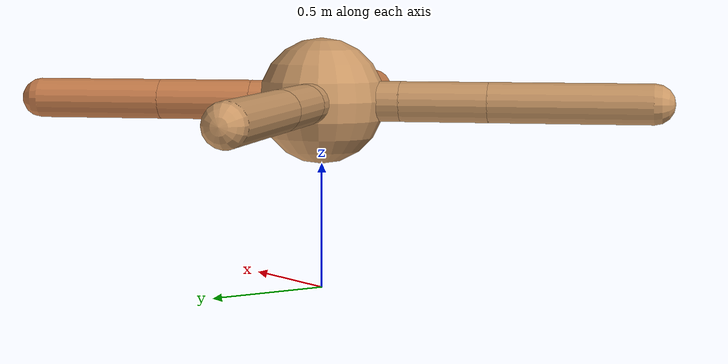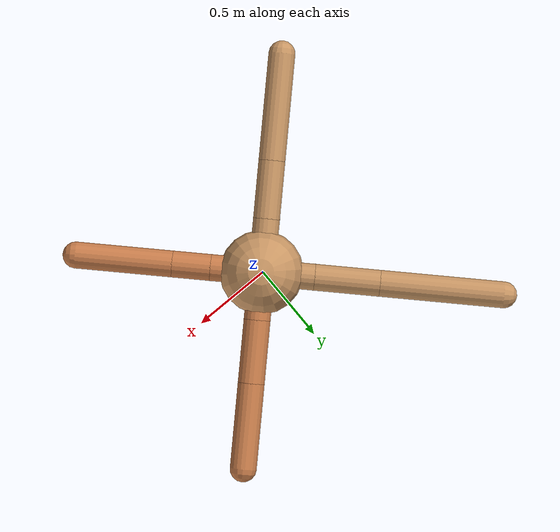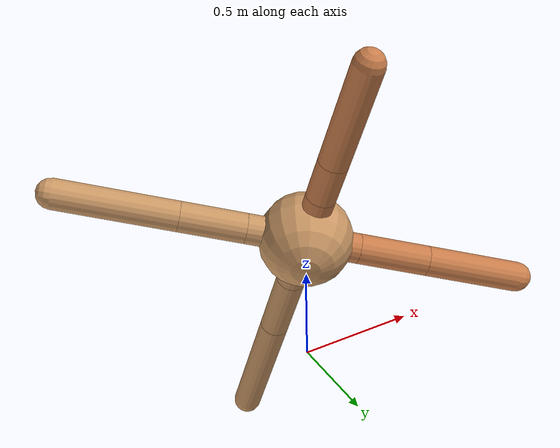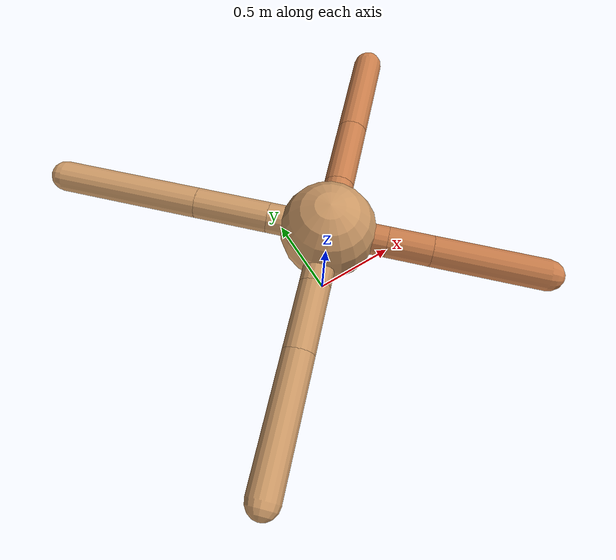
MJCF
<mujoco model="ant">
  <compiler angle="degree" coordinate="local" inertiafromgeom="true" />
  <option integrator="RK4" timestep="0.01" />
  <custom>
    <numeric data="0.0 0.0 0.55 1.0 0.0 0.0 0.0 0.0 1.0 0.0 -1.0 0.0 -1.0 0.0 1.0" name="init_qpos" />
  </custom>
  <default>
    <joint armature="1" damping="1" limited="true" />
    <geom conaffinity="0" condim="3" density="5.0" friction="1.5 0.1 0.1" margin="0.01" rgba="0.8 0.6 0.4 1" />
  </default>
  <worldbody>
    <body name="torso" pos="0 0 0.75">
      <geom name="torso_geom" pos="0 0 0" size="0.25" type="sphere" />

      <body name="front_left_leg" pos="0 0 0">
        <geom fromto="0.0 0.0 0.0 0.2008200592948425 0.2008200592948425 0.0" name="aux_1_geom" size="0.08" type="capsule" rgba=".8 .5 .3 1" />
        <body name="aux_1" pos="0.2008200592948425 0.2008200592948425 0.0">
          <joint axis="0 0 1" name="hip_1" pos="0.0 0.0 0.0" range="-40 40" type="hinge" />
          <geom fromto="0.0 0.0 0.0 0.26688185737251935 0.26688185737251935 0.0" name="left_leg_geom" size="0.08" type="capsule" rgba=".8 .5 .3 1" />
          <body pos="0.26688185737251935 0.26688185737251935 0.0" name="front_left_foot">
            <joint axis="-1 1 0" name="ankle_1" pos="0.0 0.0 0.0" range="30 100" type="hinge" />
            <geom fromto="0.0 0.0 0.0 0.36127225001820507 0.36127225001820507 0.0" name="left_ankle_geom" size="0.08" type="capsule" rgba=".8 .5 .3 1" />
          </body>
        </body>
      </body>
      <body name="front_right_leg" pos="0 0 0">
        <geom fromto="0.0 0.0 0.0 -0.22356576819008778 0.22356576819008778 0.0" name="aux_2_geom" size="0.08" type="capsule" />
        <body name="aux_2" pos="-0.22356576819008778 0.22356576819008778 0.0">
          <joint axis="0 0 1" name="hip_2" pos="0.0 0.0 0.0" range="-40 40" type="hinge" />
          <geom fromto="0.0 0.0 0.0 -0.2750281247071456 0.2750281247071456 0.0" name="right_leg_geom" size="0.08" type="capsule" />
          <body pos="-0.2750281247071456 0.2750281247071456 0.0" name="front_right_foot">
            <joint axis="1 1 0" name="ankle_2" pos="0.0 0.0 0.0" range="-100 -30" type="hinge" />
            <geom fromto="0.0 0.0 0.0 -0.5225660193729552 0.5225660193729552 0.0" name="right_ankle_geom" size="0.08" type="capsule" />
          </body>
        </body>
      </body>
      <body name="left_back_leg" pos="0 0 0">
        <geom fromto="0.0 0.0 0.0 -0.22472102359565949 -0.22472102359565949 0.0" name="aux_3_geom" size="0.08" type="capsule" />
        <body name="aux_3" pos="-0.22472102359565949 -0.22472102359565949 0.0">
          <joint axis="0 0 1" name="hip_3" pos="0.0 0.0 0.0" range="-40 40" type="hinge" />
          <geom fromto="0.0 0.0 0.0 -0.2456045823798248 -0.2456045823798248 0.0" name="back_leg_geom" size="0.08" type="capsule" />
          <body pos="-0.2456045823798248 -0.2456045823798248 0.0" name="left_back_foot">
            <joint axis="-1 1 0" name="ankle_3" pos="0.0 0.0 0.0" range="-100 -30" type="hinge" />
            <geom fromto="0.0 0.0 0.0 -0.4512024190414559 -0.4512024190414559 0.0" name="third_ankle_geom" size="0.08" type="capsule" />
          </body>
        </body>
      </body>
      <body name="right_back_leg" pos="0 0 0">
        <geom fromto="0.0 0.0 0.0 0.2155215025539583 -0.2155215025539583 0.0" name="aux_4_geom" size="0.08" type="capsule" rgba=".8 .5 .3 1" />
        <body name="aux_4" pos="0.2155215025539583 -0.2155215025539583 0.0">
          <joint axis="0 0 1" name="hip_4" pos="0.0 0.0 0.0" range="-40 40" type="hinge" />
          <geom fromto="0.0 0.0 0.0 0.16144682136959565 -0.16144682136959565 0.0" name="rightback_leg_geom" size="0.08" type="capsule" rgba=".8 .5 .3 1" />
          <body pos="0.16144682136959565 -0.16144682136959565 0.0" name="right_back_foot">
            <joint axis="1 1 0" name="ankle_4" pos="0.0 0.0 0.0" range="30 100" type="hinge" />
            <geom fromto="0.0 0.0 0.0 0.40570803570463476 -0.40570803570463476 0.0" name="fourth_ankle_geom" size="0.08" type="capsule" rgba=".8 .5 .3 1" />
          </body>
        </body>
      </body>
    </body>
  </worldbody>
  <actuator>
    <motor ctrllimited="true" ctrlrange="-1.0 1.0" joint="hip_4" gear="150" />
    <motor ctrllimited="true" ctrlrange="-1.0 1.0" joint="ankle_4" gear="150" />
    <motor ctrllimited="true" ctrlrange="-1.0 1.0" joint="hip_1" gear="150" />
    <motor ctrllimited="true" ctrlrange="-1.0 1.0" joint="ankle_1" gear="150" />
    <motor ctrllimited="true" ctrlrange="-1.0 1.0" joint="hip_2" gear="150" />
    <motor ctrllimited="true" ctrlrange="-1.0 1.0" joint="ankle_2" gear="150" />
    <motor ctrllimited="true" ctrlrange="-1.0 1.0" joint="hip_3" gear="150" />
    <motor ctrllimited="true" ctrlrange="-1.0 1.0" joint="ankle_3" gear="150" />
  </actuator>
</mujoco>
